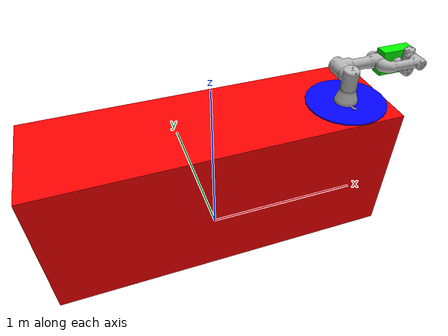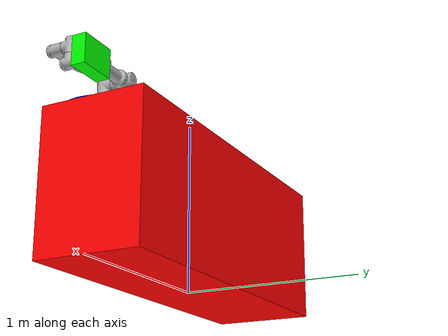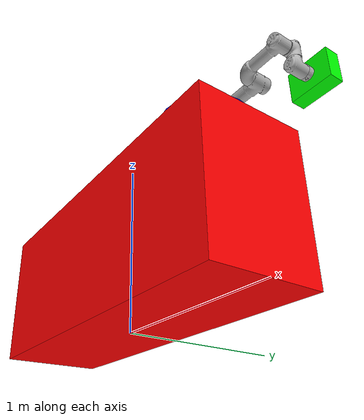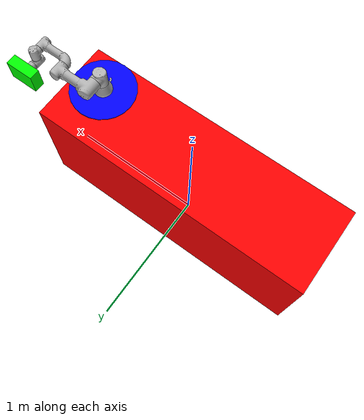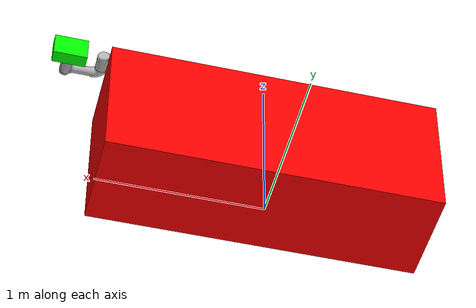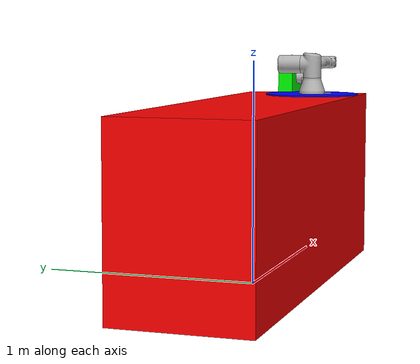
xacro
<?xml version="1.0" ?>
<!-- |    This document was autogenerated by xacro from yak_ur3_workcell.xacro         | -->
<!-- |    EDITING THIS FILE BY HAND IS NOT RECOMMENDED                                 | -->
<robot name="yak_ur3_workcell" xmlns:xacro="http://ros.org/wiki/xacro">
  <!--
  Author: Felix Messmer
-->
  <!-- measured from model -->
  <link name="base_link">
    <visual>
      <geometry>
        <mesh filename="package://ur_description/meshes/ur3/visual/base.dae"/>
      </geometry>
      <material name="LightGrey">
        <color rgba="0.7 0.7 0.7 1.0"/>
      </material>
    </visual>
    <collision>
      <geometry>
        <mesh filename="package://ur_description/meshes/ur3/collision/base.stl"/>
      </geometry>
    </collision>
    <inertial>
      <mass value="2.0"/>
      <origin rpy="0 0 0" xyz="0.0 0.0 0.0"/>
      <inertia ixx="0.0030531654454" ixy="0.0" ixz="0.0" iyy="0.0030531654454" iyz="0.0" izz="0.005625"/>
    </inertial>
  </link>
  <joint name="shoulder_pan_joint" type="revolute">
    <parent link="base_link"/>
    <child link="shoulder_link"/>
    <origin rpy="0.0 0.0 0.0" xyz="0.0 0.0 0.1519"/>
    <axis xyz="0 0 1"/>
    <limit effort="330.0" lower="-6.28318530718" upper="6.28318530718" velocity="2.16"/>
    <dynamics damping="0.0" friction="0.0"/>
  </joint>
  <link name="shoulder_link">
    <visual>
      <geometry>
        <mesh filename="package://ur_description/meshes/ur3/visual/shoulder.dae"/>
      </geometry>
      <material name="LightGrey">
        <color rgba="0.7 0.7 0.7 1.0"/>
      </material>
    </visual>
    <collision>
      <geometry>
        <mesh filename="package://ur_description/meshes/ur3/collision/shoulder.stl"/>
      </geometry>
    </collision>
    <inertial>
      <mass value="2.0"/>
      <origin rpy="0 0 0" xyz="0.0 0.0 0.0"/>
      <inertia ixx="0.0080931634294" ixy="0.0" ixz="0.0" iyy="0.0080931634294" iyz="0.0" izz="0.005625"/>
    </inertial>
  </link>
  <joint name="shoulder_lift_joint" type="revolute">
    <parent link="shoulder_link"/>
    <child link="upper_arm_link"/>
    <origin rpy="0.0 1.57079632679 0.0" xyz="0.0 0.1198 0.0"/>
    <axis xyz="0 1 0"/>
    <limit effort="330.0" lower="-6.28318530718" upper="6.28318530718" velocity="2.16"/>
    <dynamics damping="0.0" friction="0.0"/>
  </joint>
  <link name="upper_arm_link">
    <visual>
      <geometry>
        <mesh filename="package://ur_description/meshes/ur3/visual/upperarm.dae"/>
      </geometry>
      <material name="LightGrey">
        <color rgba="0.7 0.7 0.7 1.0"/>
      </material>
    </visual>
    <collision>
      <geometry>
        <mesh filename="package://ur_description/meshes/ur3/collision/upperarm.stl"/>
      </geometry>
    </collision>
    <inertial>
      <mass value="3.42"/>
      <origin rpy="0 0 0" xyz="0.0 0.0 0.121825"/>
      <inertia ixx="0.0217284832211" ixy="0.0" ixz="0.0" iyy="0.0217284832211" iyz="0.0" izz="0.00961875"/>
    </inertial>
  </link>
  <joint name="elbow_joint" type="revolute">
    <parent link="upper_arm_link"/>
    <child link="forearm_link"/>
    <origin rpy="0.0 0.0 0.0" xyz="0.0 -0.0925 0.24365"/>
    <axis xyz="0 1 0"/>
    <limit effort="150.0" lower="-3.14159265359" upper="3.14159265359" velocity="3.15"/>
    <dynamics damping="0.0" friction="0.0"/>
  </joint>
  <link name="forearm_link">
    <visual>
      <geometry>
        <mesh filename="package://ur_description/meshes/ur3/visual/forearm.dae"/>
      </geometry>
      <material name="LightGrey">
        <color rgba="0.7 0.7 0.7 1.0"/>
      </material>
    </visual>
    <collision>
      <geometry>
        <mesh filename="package://ur_description/meshes/ur3/collision/forearm.stl"/>
      </geometry>
    </collision>
    <inertial>
      <mass value="1.26"/>
      <origin rpy="0 0 0" xyz="0.0 0.0 0.106625"/>
      <inertia ixx="0.00654680644378" ixy="0.0" ixz="0.0" iyy="0.00654680644378" iyz="0.0" izz="0.00354375"/>
    </inertial>
  </link>
  <joint name="wrist_1_joint" type="revolute">
    <parent link="forearm_link"/>
    <child link="wrist_1_link"/>
    <origin rpy="0.0 1.57079632679 0.0" xyz="0.0 0.0 0.21325"/>
    <axis xyz="0 1 0"/>
    <limit effort="54.0" lower="-6.28318530718" upper="6.28318530718" velocity="3.2"/>
    <dynamics damping="0.0" friction="0.0"/>
  </joint>
  <link name="wrist_1_link">
    <visual>
      <geometry>
        <mesh filename="package://ur_description/meshes/ur3/visual/wrist1.dae"/>
      </geometry>
      <material name="LightGrey">
        <color rgba="0.7 0.7 0.7 1.0"/>
      </material>
    </visual>
    <collision>
      <geometry>
        <mesh filename="package://ur_description/meshes/ur3/collision/wrist1.stl"/>
      </geometry>
    </collision>
    <inertial>
      <mass value="0.8"/>
      <origin rpy="0 0 0" xyz="0.0 0.0 0.0"/>
      <inertia ixx="0.002084999166" ixy="0.0" ixz="0.0" iyy="0.002084999166" iyz="0.0" izz="0.00225"/>
    </inertial>
  </link>
  <joint name="wrist_2_joint" type="revolute">
    <parent link="wrist_1_link"/>
    <child link="wrist_2_link"/>
    <origin rpy="0.0 0.0 0.0" xyz="0.0 0.08505 0.0"/>
    <axis xyz="0 0 1"/>
    <limit effort="54.0" lower="-6.28318530718" upper="6.28318530718" velocity="3.2"/>
    <dynamics damping="0.0" friction="0.0"/>
  </joint>
  <link name="wrist_2_link">
    <visual>
      <geometry>
        <mesh filename="package://ur_description/meshes/ur3/visual/wrist2.dae"/>
      </geometry>
      <material name="LightGrey">
        <color rgba="0.7 0.7 0.7 1.0"/>
      </material>
    </visual>
    <collision>
      <geometry>
        <mesh filename="package://ur_description/meshes/ur3/collision/wrist2.stl"/>
      </geometry>
    </collision>
    <inertial>
      <mass value="0.8"/>
      <origin rpy="0 0 0" xyz="0.0 0.0 0.0"/>
      <inertia ixx="0.002084999166" ixy="0.0" ixz="0.0" iyy="0.002084999166" iyz="0.0" izz="0.00225"/>
    </inertial>
  </link>
  <joint name="wrist_3_joint" type="revolute">
    <parent link="wrist_2_link"/>
    <child link="wrist_3_link"/>
    <origin rpy="0.0 0.0 0.0" xyz="0.0 0.0 0.08535"/>
    <axis xyz="0 1 0"/>
    <limit effort="54.0" lower="-6.28318530718" upper="6.28318530718" velocity="3.2"/>
    <dynamics damping="0.0" friction="0.0"/>
  </joint>
  <link name="wrist_3_link">
    <visual>
      <geometry>
        <mesh filename="package://ur_description/meshes/ur3/visual/wrist3.dae"/>
      </geometry>
      <material name="LightGrey">
        <color rgba="0.7 0.7 0.7 1.0"/>
      </material>
    </visual>
    <collision>
      <geometry>
        <mesh filename="package://ur_description/meshes/ur3/collision/wrist3.stl"/>
      </geometry>
    </collision>
    <inertial>
      <mass value="0.35"/>
      <origin rpy="0 0 0" xyz="0.0 0.0 0.0"/>
      <inertia ixx="0.000912187135125" ixy="0.0" ixz="0.0" iyy="0.000912187135125" iyz="0.0" izz="0.000984375"/>
    </inertial>
  </link>
  <joint name="ee_fixed_joint" type="fixed">
    <parent link="wrist_3_link"/>
    <child link="ee_link"/>
    <origin rpy="0.0 0.0 1.57079632679" xyz="0.0 0.0819 0.0"/>
  </joint>
  <link name="ee_link">
    <collision>
      <geometry>
        <box size="0.01 0.01 0.01"/>
      </geometry>
      <origin rpy="0 0 0" xyz="-0.01 0 0"/>
    </collision>
  </link>
  <transmission name="shoulder_pan_trans">
    <type>transmission_interface/SimpleTransmission</type>
    <joint name="shoulder_pan_joint">
      <hardwareInterface>PositionJointInterface</hardwareInterface>
    </joint>
    <actuator name="shoulder_pan_motor">
      <mechanicalReduction>1</mechanicalReduction>
    </actuator>
  </transmission>
  <transmission name="shoulder_lift_trans">
    <type>transmission_interface/SimpleTransmission</type>
    <joint name="shoulder_lift_joint">
      <hardwareInterface>PositionJointInterface</hardwareInterface>
    </joint>
    <actuator name="shoulder_lift_motor">
      <mechanicalReduction>1</mechanicalReduction>
    </actuator>
  </transmission>
  <transmission name="elbow_trans">
    <type>transmission_interface/SimpleTransmission</type>
    <joint name="elbow_joint">
      <hardwareInterface>PositionJointInterface</hardwareInterface>
    </joint>
    <actuator name="elbow_motor">
      <mechanicalReduction>1</mechanicalReduction>
    </actuator>
  </transmission>
  <transmission name="wrist_1_trans">
    <type>transmission_interface/SimpleTransmission</type>
    <joint name="wrist_1_joint">
      <hardwareInterface>PositionJointInterface</hardwareInterface>
    </joint>
    <actuator name="wrist_1_motor">
      <mechanicalReduction>1</mechanicalReduction>
    </actuator>
  </transmission>
  <transmission name="wrist_2_trans">
    <type>transmission_interface/SimpleTransmission</type>
    <joint name="wrist_2_joint">
      <hardwareInterface>PositionJointInterface</hardwareInterface>
    </joint>
    <actuator name="wrist_2_motor">
      <mechanicalReduction>1</mechanicalReduction>
    </actuator>
  </transmission>
  <transmission name="wrist_3_trans">
    <type>transmission_interface/SimpleTransmission</type>
    <joint name="wrist_3_joint">
      <hardwareInterface>PositionJointInterface</hardwareInterface>
    </joint>
    <actuator name="wrist_3_motor">
      <mechanicalReduction>1</mechanicalReduction>
    </actuator>
  </transmission>
  <!-- nothing to do here at the moment -->
  <!-- ROS base_link to UR 'Base' Coordinates transform -->
  <link name="base"/>
  <joint name="base_link-base_fixed_joint" type="fixed">
    <!-- NOTE: this rotation is only needed as long as base_link itself is
                 not corrected wrt the real robot (ie: rotated over 180
                 degrees)
      -->
    <origin rpy="0 0 -3.14159265359" xyz="0 0 0"/>
    <parent link="base_link"/>
    <child link="base"/>
  </joint>
  <!-- Frame coincident with all-zeros TCP on UR controller -->
  <link name="tool0"/>
  <joint name="wrist_3_link-tool0_fixed_joint" type="fixed">
    <origin rpy="-1.57079632679 0 0" xyz="0 0.0819 0"/>
    <parent link="wrist_3_link"/>
    <child link="tool0"/>
  </joint>
  <link name="world_frame"/>
  <link name="table">
    <origin rpy="0 0 0" xyz="0 0 0"/>
    <visual>
      <geometry>
        <box size="2 0.6096 0.8128"/>
      </geometry>
      <material name="red">
        <color rgba="1 0 0 1"/>
      </material>
    </visual>
    <collision>
      <geometry>
        <box size="2 0.6096 0.8128"/>
      </geometry>
    </collision>
  </link>
  <link name="adapter">
    <origin rpy="0 0 0" xyz="0 0 0"/>
    <visual>
      <geometry>
        <cylinder length="0.0127" radius="0.2286"/>
      </geometry>
      <material name="blue">
        <color rgba="0 0 1 1"/>
      </material>
    </visual>
    <collision>
      <geometry>
        <cylinder length="0.0127" radius="0.2286"/>
      </geometry>
    </collision>
  </link>
  <link name="end_effector">
    <origin rpy="0 0 0" xyz="0.0 0.0 0.0"/>
    <visual>
      <geometry>
        <box size="0.2032 0.1524 0.0762"/>
      </geometry>
      <material name="green">
        <color rgba="0 1 0 1"/>
      </material>
    </visual>
    <collision>
      <geometry>
        <box size="0.2032 0.1524 0.0762"/>
      </geometry>
    </collision>
  </link>
  <link name="camera_link"/>
  <joint name="world_to_table" type="fixed">
    <parent link="world_frame"/>
    <child link="table"/>
    <origin rpy="0 0.0 0.0" xyz="0.0 0.0 0.4064"/>
  </joint>
  <joint name="table_to_adapter" type="fixed">
    <parent link="table"/>
    <child link="adapter"/>
    <origin rpy="0.0 0.0 0.0" xyz="0.7714 -0.0762 0.4064"/>
  </joint>
  <joint name="adapter_to_ur3" type="fixed">
    <parent link="adapter"/>
    <child link="base_link"/>
    <origin rpy="0.0 0.0 0.0" xyz="0.0 0.0 0.0"/>
  </joint>
  <joint name="tool0_to_eef" type="fixed">
    <parent link="tool0"/>
    <child link="end_effector"/>
    <origin rpy="0.0 0.0 0.0" xyz="0 0 0.0381"/>
  </joint>
  <joint name="eef_to_camera_link" type="fixed">
    <parent link="end_effector"/>
    <child link="camera_link"/>
    <origin rpy="0.0 0.0 0.0" xyz="0.0 0.0 0.0"/>
  </joint>
</robot>
